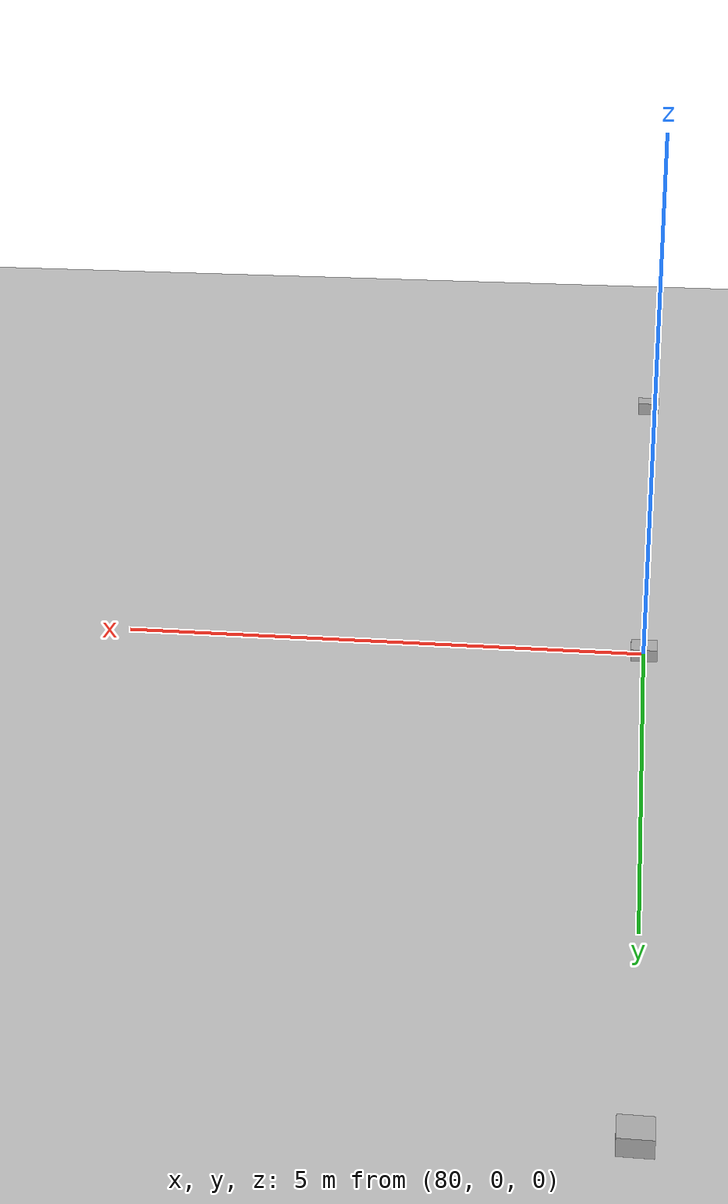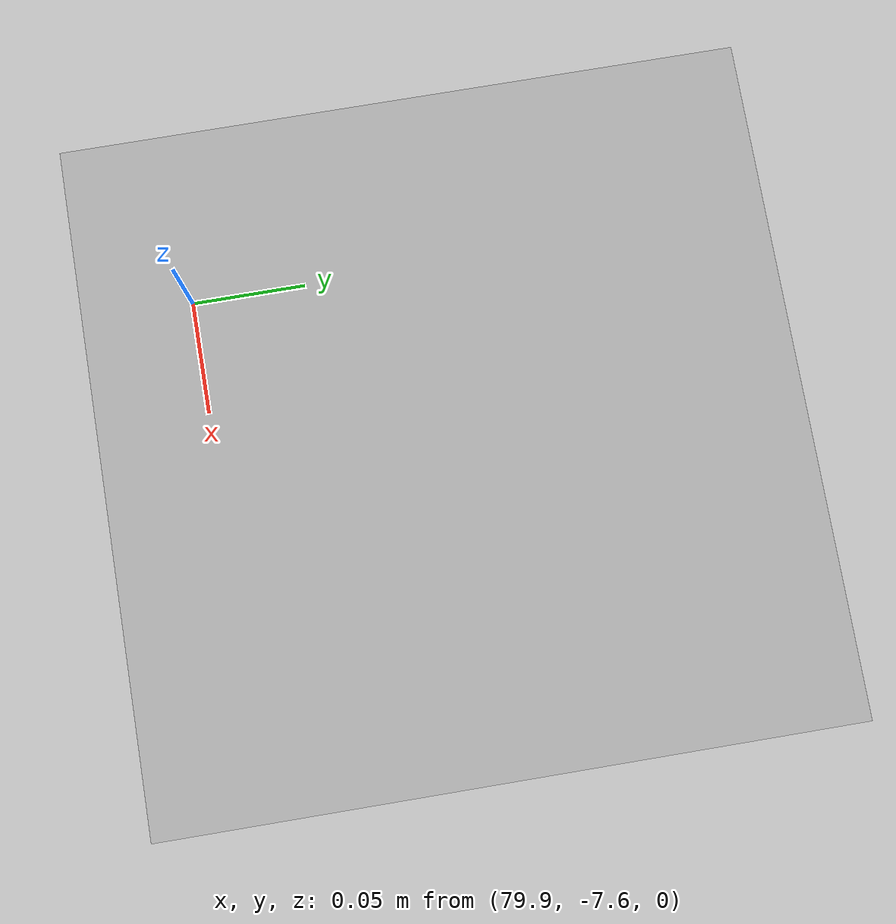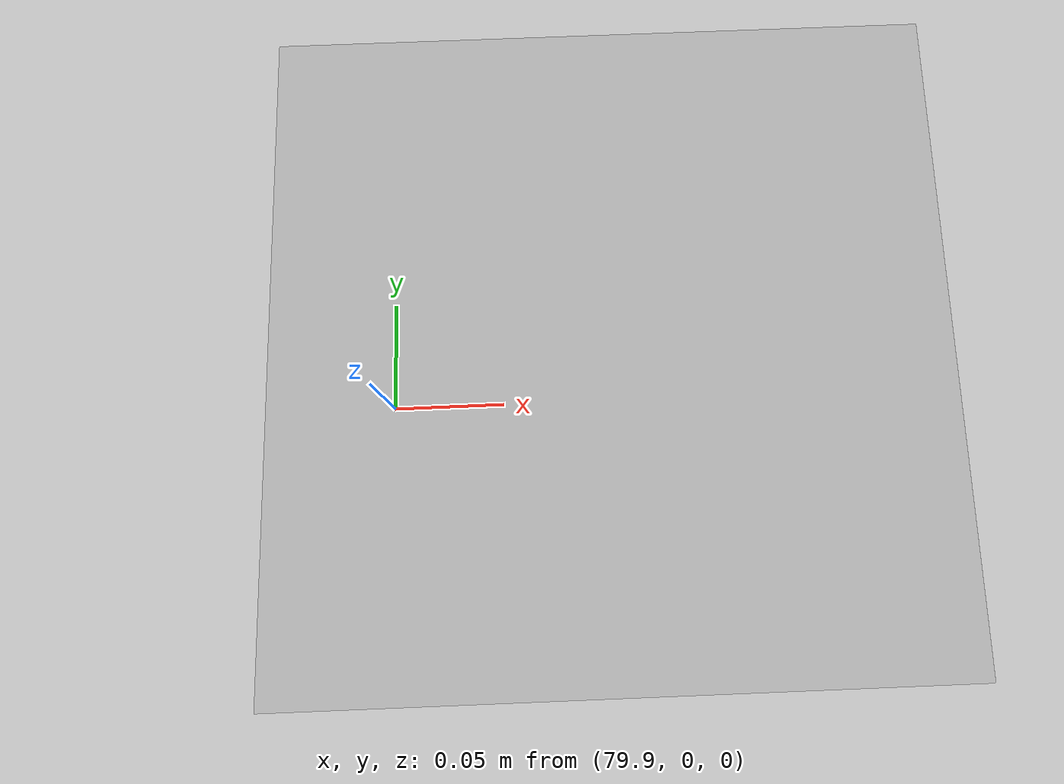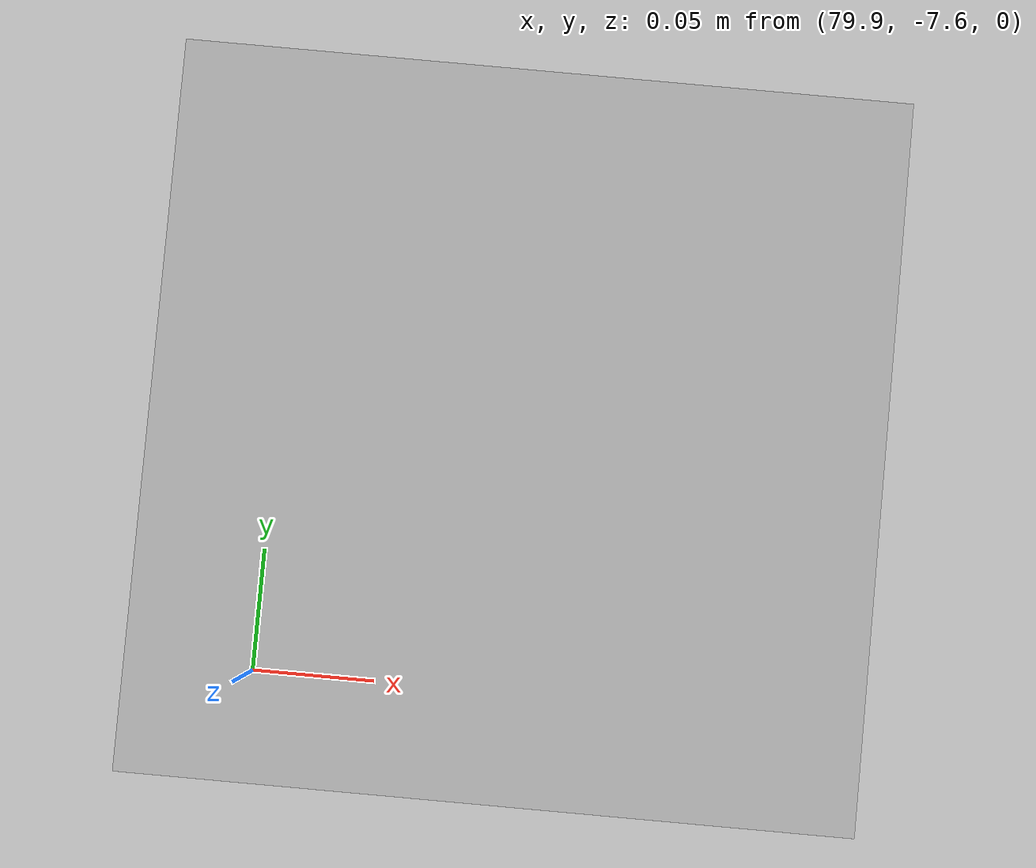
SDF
<?xml version="1.0" ?>
<sdf version="1.6">

  <world name="default">

    <include>
      <uri>model://ground_plane</uri>
    </include>

      <include>
         <uri>model://sun</uri>
      </include>

      <model name='box_c'>
	<link name='base_c'>
	  <pose frame=''>0 0 0 0 0 0</pose>
	  <inertial>
	    <pose frame=''>80 0 0 0 0 0</pose>
	    <mass>1</mass>
	    <inertia>
	      <ixx>1</ixx>
	      <ixy>0</ixy>
	      <ixz>0</ixz>
	      <iyy>1</iyy>
	      <iyz>0</iyz>
	      <izz>1</izz>
	    </inertia>
	  </inertial>
	  <collision name='base_c_collision'>
	    <pose frame=''>80 0 0 0 0 0</pose>
	    <geometry>
	      <box>
		<size>0.25 0.25 0.25</size>
	      </box>
	    </geometry>
	  </collision>
	  <visual name='base_c_visual'>
	    <pose frame=''>80 0 0 0 0 0</pose>
	    <geometry>
	      <box>
		<size>0.25 0.25 0.2</size>
	      </box>
	    </geometry>
</visual>
	</link>
	 </model>

	      <model name='box_L'>
	<link name='base_L'>
	  <pose frame=''>0 0 0 0 0 0</pose>
	  <inertial>
	    <pose frame=''>80 7.5 0 0 -0 0</pose>
	    <mass>1</mass>
	    <inertia>
	      <ixx>1</ixx>
	      <ixy>0</ixy>
	      <ixz>0</ixz>
	      <iyy>1</iyy>
	      <iyz>0</iyz>
	      <izz>1</izz>
	    </inertia>
	  </inertial>
	  <collision name='base_L_collision'>
	    <pose frame=''>80 7.5 0 0 -0 0</pose>
	    <geometry>
	      <box>
		<size>0.25 0.25 0.25</size>
	      </box>
	    </geometry>
	  </collision>
	  <visual name='base_L_visual'>
	    <pose frame=''>80 7.5 0 0 -0 0</pose>
	    <geometry>
	      <box>
		<size>0.25 0.25 0.25</size>
	      </box>
	    </geometry>
	  </visual>
	</link>
	 </model>

	<model name='box_R'>
	<link name='base_R'>
	  <pose frame=''>0 0 0 0 -0 0</pose>
	  <inertial>
	    <pose frame=''>80 -7.5 0 0 -0 0</pose>
	    <mass>1</mass>
	    <inertia>
	      <ixx>1</ixx>
	      <ixy>0</ixy>
	      <ixz>0</ixz>
	      <iyy>1</iyy>
	      <iyz>0</iyz>
	      <izz>1</izz>
	    </inertia>
	  </inertial>
	  <collision name='base_R_collision'>
	    <pose frame=''>80 -7.5 0 0 -0 0</pose>
	    <geometry>
	      <box>
		<size>0.25 0.25 0.25</size>
	      </box>
	    </geometry>
	  </collision>
	  <visual name='base_R_visual'>
	    <pose frame=''>80 -7.5 0 0 -0 0</pose>
	    <geometry>
	      <box>
		<size>0.25 0.25 0.25</size>
	      </box>
	    </geometry>
	  </visual>
	</link>
	</model>

   </world>
</sdf>
